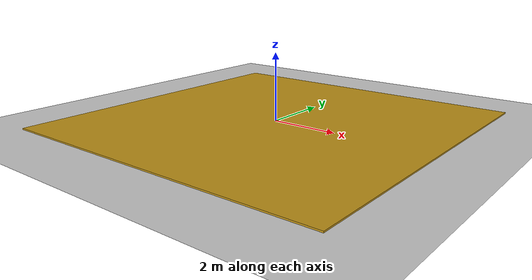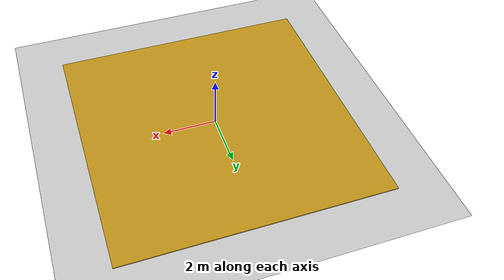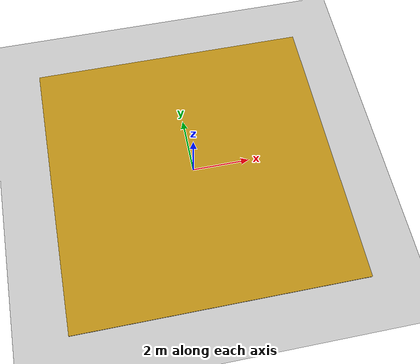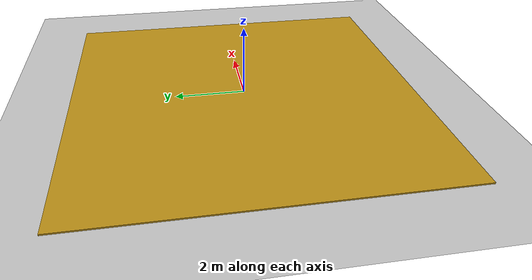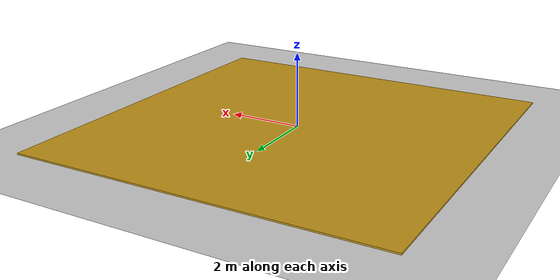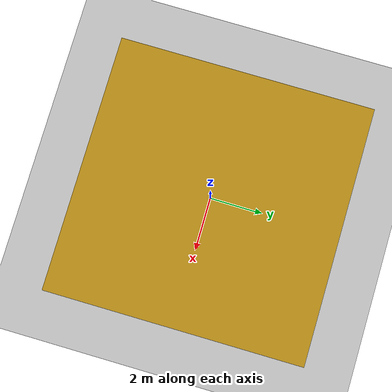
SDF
<?xml version="1.0" ?>
<sdf version="1.5">

<world name="default">

<!-- A global light source -->
<scene>
    <ambient>0.5 0.5 0.5 1.0</ambient>
    <shadows>true</shadows>
</scene>

<!-- Coordinates -->
<spherical_coordinates>
    <surface_model>EARTH_WGS84</surface_model>
    <latitude_deg>0</latitude_deg>
    <longitude_deg>0</longitude_deg>
    <elevation>0</elevation>
    <heading_deg>0</heading_deg>
</spherical_coordinates>

<!-- Camera -->
    <gui fullscreen='0'>
    <camera name='user_camera'>
    <pose>7.8971 -5.86361 6.86576 0 0.507643 2.3202</pose>
    <view_controller>orbit</view_controller>
    <projection_type>perspective</projection_type>
    </camera>
</gui>

<!-- Own physics settings to speed up simulation -->
<physics type='ode'>
    <max_step_size>0.01</max_step_size>
    <real_time_factor>1.0</real_time_factor>
    <real_time_update_rate>100</real_time_update_rate>
    <gravity>0 0 -9.8</gravity>
</physics>

<light type="directional" name="sun">
    <cast_shadows>true</cast_shadows>
    <pose>0 0 10 0 0 0</pose>
    <diffuse>0.8 0.8 0.8 1</diffuse>
    <specular>0.2 0.2 0.2 1</specular>
    <attenuation>
        <range>1000</range>
        <constant>0.9</constant>
        <linear>0.01</linear>
        <quadratic>0.001</quadratic>
    </attenuation>
    <direction>-0.5 0.1 -0.9</direction>
</light>

<model name="ground_plane">
    <static>true</static>
    <link name="link">
        <collision name="collision">
        <geometry>
            <plane>
            <normal>0 0 1</normal>
            </plane>
        </geometry>
        </collision>
        <visual name="visual">
        <geometry>
            <plane>
            <normal>0 0 1</normal>
            <size>100 100</size>
            </plane>
        </geometry>
        <material>
            <ambient>0.8 0.8 0.8 1</ambient>
            <diffuse>0.8 0.8 0.8 1</diffuse>
            <specular>0.8 0.8 0.8 1</specular>
        </material>
        </visual>
    </link>
</model>

<include>
    <uri>../models/floor.sdf</uri>
</include>

</world>
</sdf>

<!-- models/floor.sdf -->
<sdf version="1.5">

  <model name='floor'>
    <static>true</static>
    <link name='link'>
      <collision name='collisionsuelo'>
        <geometry>
          <box>
            <size>10 10 0.05</size>
          </box>
        </geometry>

        <surface>
          <friction>
            <ode>
              <mu>100.0</mu>
              <mu2>50.0</mu2>
              <slip1>0.0</slip1>
              <slip2>0.0</slip2>
            </ode>
          </friction>
        </surface>

      </collision>

      <visual name='visualsuelo'>
        <geometry>
          <box>
            <size>10 10 0.05</size>
          </box>
        </geometry>
        <material>
            <ambient>0.76 0.58 0.09 1</ambient>
            <diffuse>0.76 0.58 0.09 1</diffuse>
        </material>
      </visual>
      <self_collide>0</self_collide>
      <kinematic>0</kinematic>
      <gravity>1</gravity>
    </link>
  </model>

</sdf>
